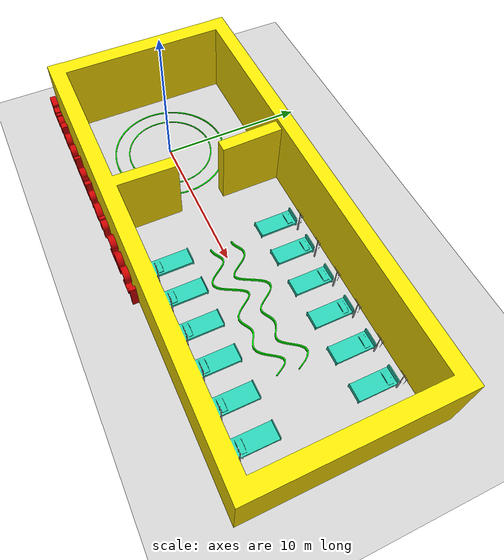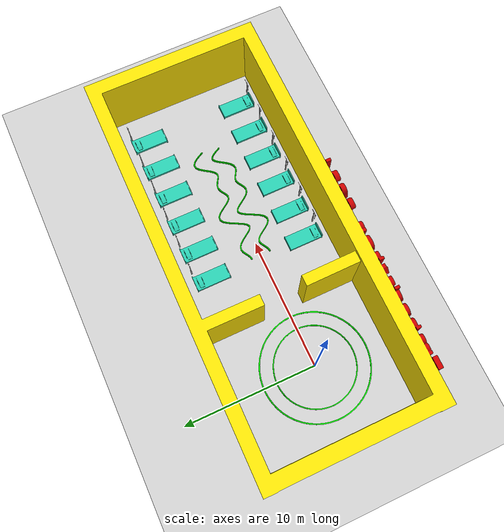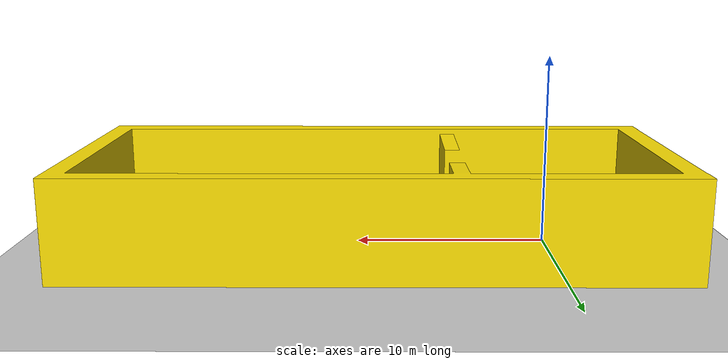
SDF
<?xml version="1.0"?>
<sdf version="1.4">
  <world name="default">
    <include>
      <uri>model://ground_plane</uri>
    </include>
    <include>
      <uri>model://sun</uri>
    </include>
      <include>
      <uri>model://arena_task1_2</uri>
      <pose>0.0 0 -0.1 0 0 0</pose>
    </include>
  </world>
</sdf>

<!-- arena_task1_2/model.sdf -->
<sdf version="1.6">
  <model name="arena_task1_2">
    <pose>0 0 0  0 0 0</pose>
    <static>true</static>
    <link name="link">
      <collision name="colision1">
        <geometry>
          <mesh>
            <uri>model://arena_task1_2/meshes/Final_Map1.dae</uri>
            <scale>1 1 1</scale>
          </mesh>
        </geometry>
      </collision>

      <visual name="visual1">
        <cast_shadows>true</cast_shadows>
        <geometry>
          <mesh>
            <uri>model://arena_task1_2/meshes/Final_Map1.dae</uri>
            <scale>1 1 1</scale>
          </mesh>
        </geometry>
      </visual>

    </link>
  </model>
</sdf>
